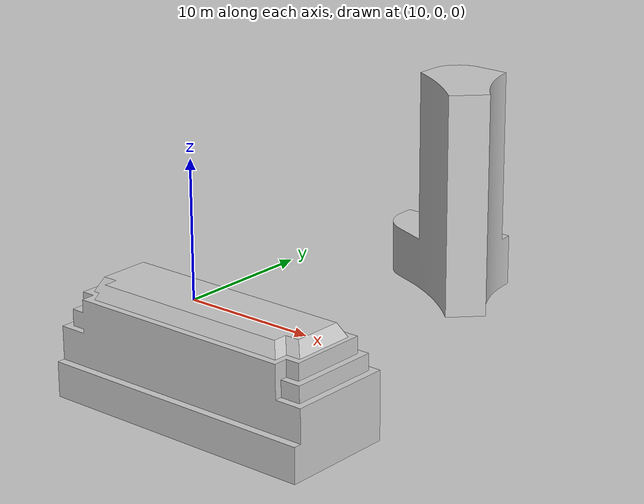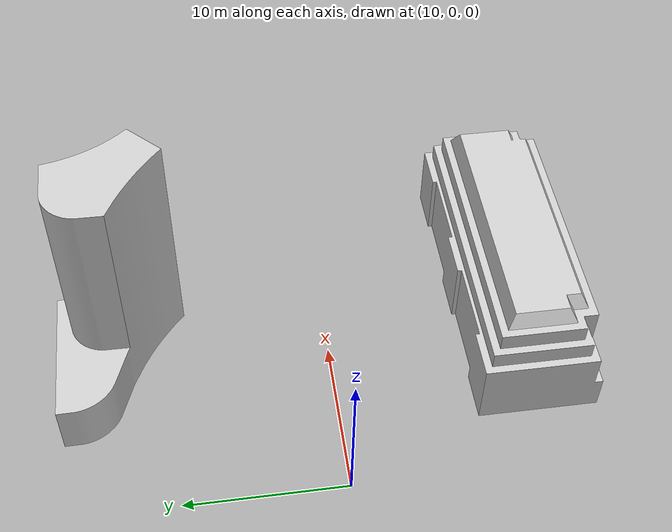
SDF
<?xml version="1.0" ?>
<sdf version="1.9">
  <model name="test_1">
    <static>true</static>
    <link name="link">
      <collision name="collision">
        <geometry>
          <mesh>
            <uri>model://test_1/meshes/test_1.stl</uri>
          </mesh>
        </geometry>
      </collision>
      <visual name="visual">
        <geometry>
          <mesh>
            <uri>model://test_1/meshes/test_1.stl</uri>
          </mesh>
        </geometry>
        <material>
            <ambient>0.8 0.8 0.8 1</ambient>
            <diffuse>0.8 0.8 0.8 1</diffuse>
            <specular>0.8 0.8 0.8 1</specular>
        </material>
      </visual>
    </link>
  </model>
</sdf>
